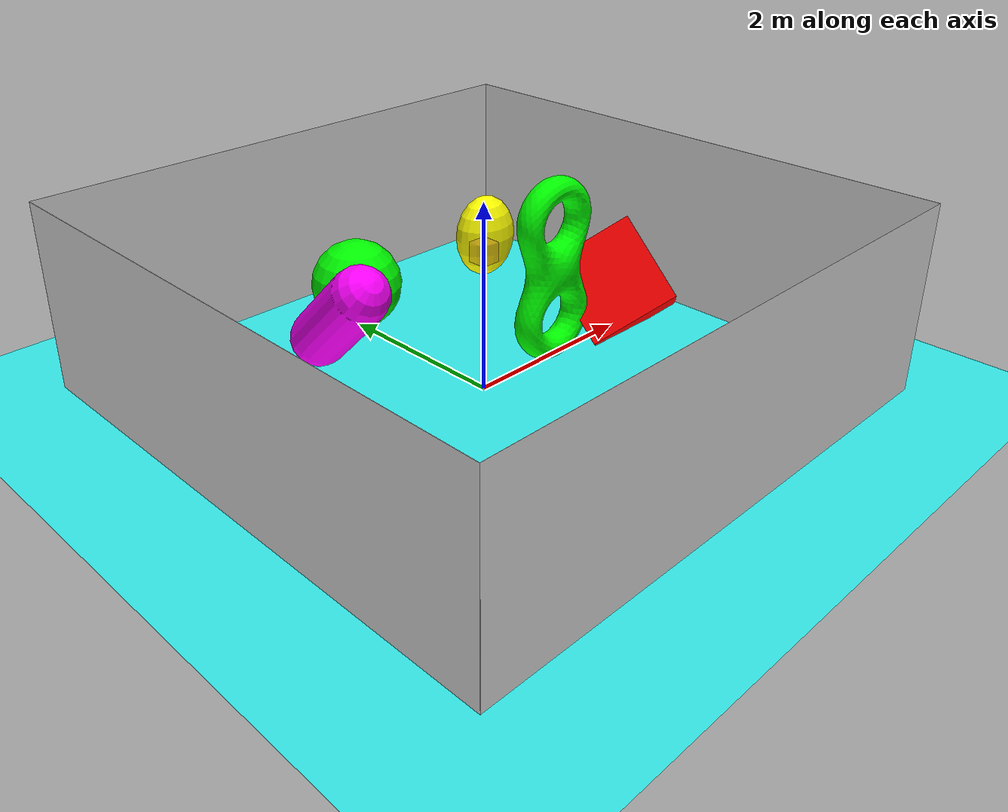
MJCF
<?xml version="1.0" ?>
<mujoco model="demo">
    <asset>
        <mesh name="eight" file="assets/eight.obj"/>
    </asset>

    <worldbody>
        <light pos=" 3 0 5." dir="0 0 -1"/>
        <light pos="-3 0 5." dir="0 0 -1"/>
        <light pos="0  3 5." dir="0 0 -1"/>
        <light pos="0 -3 5." dir="0 0 -1"/>

        <!-- 地面+四面墙 -->
        <geom name="ground" type="plane" size="5 5 0.1" pos="0 0 0" rgba="0.2 0.9 0.9 1"/>
        <geom name="wall1" type="box" size="1e-3 3 1" pos=" 3 0 1" rgba="0.9 0.9 0.9 1"/>
        <geom name="wall2" type="box" size="1e-3 3 1" pos="-3 0 1" rgba="0.9 0.9 0.9 1"/>
        <geom name="wall3" type="box" size="3 1e-3 1" pos="0  3 1" rgba="0.9 0.9 0.9 1"/>
        <geom name="wall4" type="box" size="3 1e-3 1" pos="0 -3 1" rgba="0.9 0.9 0.9 1"/>

        <!-- 盒子 -->
        <geom name="box1" type="box" size="0.5 0.5 0.5" pos="2 0 0.5" euler="45 -45 0" rgba="1 0 0 1"/>

        <!-- 球体 -->
        <geom name="sphere1" type="sphere" size="0.5" pos="0 2 0.5" rgba="0 1 0 1"/>

        <!-- 圆柱体 -->
        <geom name="cylinder1" type="cylinder" size="0.4 0.6" pos="0 -2 0.4" euler="0 90 0" rgba="0 0 1 1"/>

        <!-- 椭球体 -->
        <geom name="ellipsoid1" type="ellipsoid" size="0.4 0.3 0.5" pos="2 2 0.5" rgba="1 1 0 1"/>

        <!-- 胶囊体 -->
        <geom name="capsule1" type="capsule" size="0.3 0.5" pos="-1 1 0.8" euler="45 0 0" rgba="1 0 1 1"/>

        <!-- mesh -->
        <geom mesh="eight" pos="1 0 1" euler="0 0 0" rgba="0 1 0 1" type="mesh"/>

        <!-- 激光雷达 -->
        <body name="your_robot_name" pos="0 0 1.5" quat="1 0 0 0" mocap="true">
            <inertial pos="0 0 0" mass="1e-4" diaginertia="1e-9 1e-9 1e-9"/>
            <site name="lidar_site" quat="0 1 0 0" size="0.001" type='sphere'/>
            <geom type="box" size="0.1 0.1 0.1" density="0" contype="0" conaffinity="0" rgba="0.9 0.3 0.3 0.2"/>
        </body>

    </worldbody>
</mujoco>
